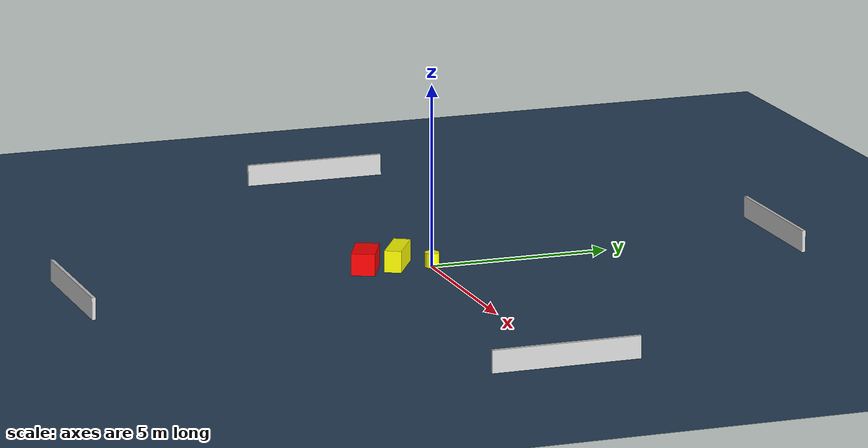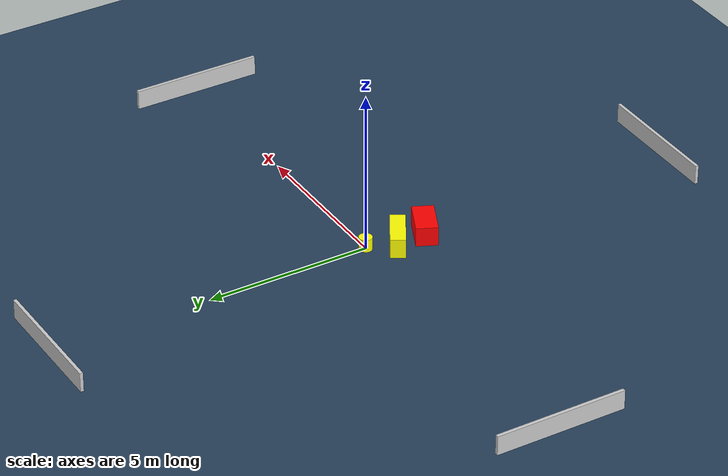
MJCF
<?xml version="1.0" ?>
<mujoco model="generated_environment">
  <option timestep="0.01" integrator="RK4" cone="elliptic"/>
  <default>
    <geom density="1"/>
  </default>
  <asset>
    <texture builtin="gradient" height="3072" name="skybox" rgb1="0.3 0.5 0.7" rgb2="0 0 0" type="skybox" width="512"/>
    <texture builtin="checker" height="300" name="groundplane" rgb1="0.2 0.3 0.4" rgb2="0.1 0.2 0.3" type="2d" width="300"/>
    <material name="groundplane" reflectance="0.2" texrepeat="5 5" texture="groundplane"/>
  </asset>
  <worldbody>
    <light dir="0 0 -1" directional="true" pos="0 0 1.5"/>
    <geom condim="3" friction="0.5 0.005 0.001" material="groundplane" name="floor" pos="0 0 0" size="0 0 0.05" type="plane"/>
    <body name="walls">
      <geom name="wall_1" condim="4" pos="-10.0 0.0 0.3" rgba="0.800000011920929 0.800000011920929 0.800000011920929 1.0" size="0.05 2.0 0.3" type="box"/>
      <geom name="wall_2" condim="4" pos="10.0 0.0 0.3" rgba="0.800000011920929 0.800000011920929 0.800000011920929 1.0" size="0.05 2.0 0.3" type="box"/>
      <geom name="wall_3" condim="4" pos="0.0 -10.0 0.3" rgba="0.800000011920929 0.800000011920929 0.800000011920929 1.0" size="2.0 0.05 0.3" type="box"/>
      <geom name="wall_4" condim="4" pos="0.0 10.0 0.3" rgba="0.800000011920929 0.800000011920929 0.800000011920929 1.0" size="2.0 0.05 0.3" type="box"/>
    </body>
    <body name="robot">
      <joint name="joint_x" type="slide" pos="0 0 0" axis="1 0 0"/>
      <joint name="joint_y" type="slide" pos="0 0 0" axis="0 1 0"/>
      <geom name="robot" type="cylinder" pos="0.0 0.0 0.2" size="0.2 0.2 0.0" mass="5.0" friction="1.0 0.005 0.0001" condim="4" rgba="1.0 1.0 0.0 1.0"/>
    </body>
    <body name="obstacle_1_movable">
      <geom name="obstacle_1_movable" condim="4" pos="-0.3095672473137328 -0.8726425961294495 0.3" euler="0 0 149.4827381723756" friction="0.0 0.005 0.001" rgba="1.0 1.0 0.0 1.0" size="0.6525696126063457 0.22799357451249486 0.3" type="box" mass="0.1"/>
      <joint type="free"/>
    </body>
    <body name="obstacle_2_static">
      <geom name="obstacle_2_static" condim="4" pos="-0.24447529625513967 -1.8107100554233315 0.3" euler="0 0 65.02454920623677" friction="0.0 0.005 0.001" rgba="1.0 0.0 0.0 1.0" size="0.3241614050537611 0.5788876651399306 0.3" type="box"/>
    </body>
  </worldbody>
  <actuator>
    <motor name="actuator_x" joint="joint_x" gear="1" ctrlrange="-1 1"/>
    <motor name="actuator_y" joint="joint_y" gear="1" ctrlrange="-1 1"/>
  </actuator>
</mujoco>
